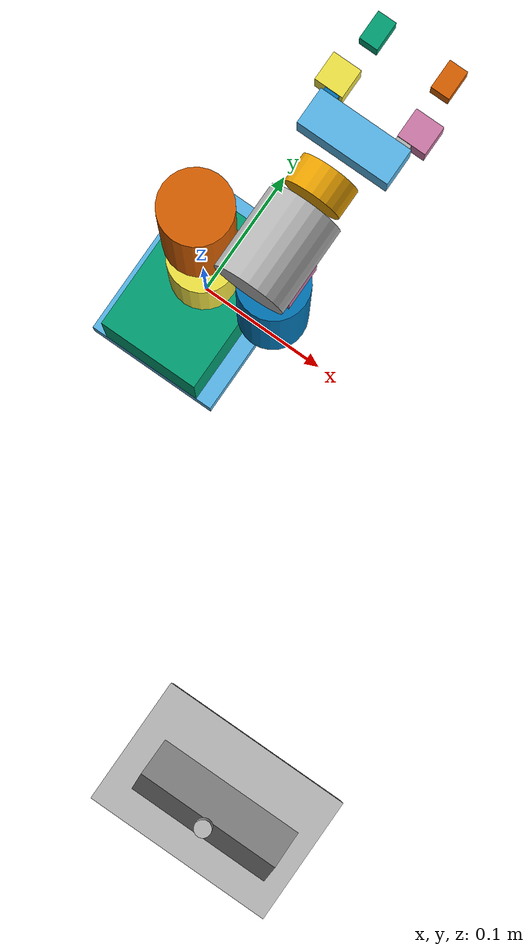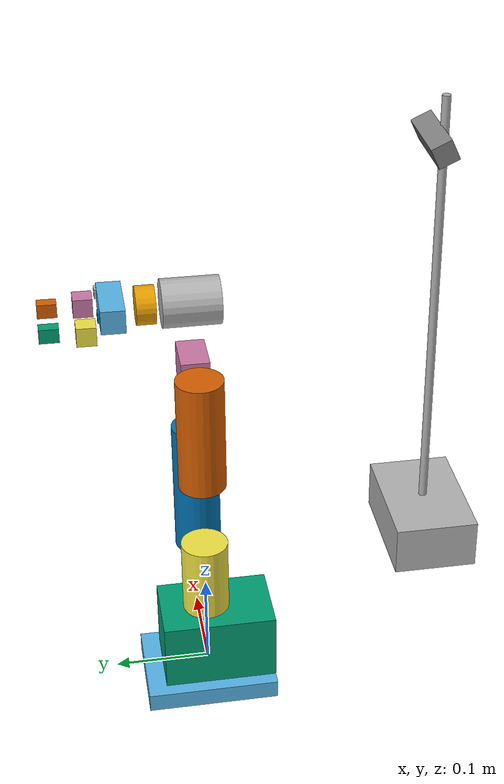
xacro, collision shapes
<?xml version="1.0"?>
<robot name="arm_6dof" xmlns:xacro="http://www.ros.org/wiki/xacro" >
    <xacro:arg name="robot_name" default="arm_6dof"/>
    <xacro:arg name="add_world" default="true"/>
    <xacro:arg name="base_link" default="base_link"/>
    <xacro:arg name="base_type" default="g_shape"/>
    <xacro:arg name="flange_link" default="link6_flange"/>
    <xacro:arg name="gripper_type" default="adaptive_gripper"/>
    <xacro:arg name="use_gripper" default="true"/>

    <xacro:if value="$(arg add_world)">
      <link name="world"/>
      <joint name="virtual_joint" type="fixed">
          <parent link="world"/>
          <child link="$(arg base_link)"/>
          <origin xyz="0 0 0" rpy="0 0 0"/>
      </joint>
    </xacro:if>

    <xacro:property name="current_base" value="$(arg base_type)"/>
    <xacro:if value="${current_base == 'g_shape'}">
        <xacro:include filename="$(find arm_description)/urdf/mech/arm_base.urdf.xacro"/>
        <xacro:arm_base
            base_link="$(arg base_link)"/>
    </xacro:if>

    <xacro:include filename="$(find arm_description)/urdf/mech/arm_define.urdf.xacro"/>
    <xacro:arm_define
      base_link="$(arg base_link)"
      flange_link="$(arg flange_link)">
      <origin xyz="0 0 0" rpy="0 0 0"/>
    </xacro:arm_define>

    <xacro:if value="$(arg use_gripper)">
        <xacro:property name="current_gripper" value="$(arg gripper_type)"/>
        <xacro:if value="${current_gripper == 'adaptive_gripper'}">
            <xacro:include filename="$(find arm_description)/urdf/mech/adaptive_gripper.urdf.xacro"/>
            <xacro:adaptive_gripper
                parent="$(arg flange_link)">
                <origin xyz="0 0 0.034" rpy="1.579 0 0"/>
            </xacro:adaptive_gripper>
        </xacro:if>
    </xacro:if>

    <xacro:include filename="$(find arm_description)/urdf/control/gazebo_sim_ros2_control.urdf.xacro"/>
    <xacro:load_gazebo_sim_ros2_control_plugin/>

    <xacro:include filename="$(find arm_description)/urdf/control/arm_transmission.urdf.xacro" />
    <xacro:arm_transmission
      flange_link="$(arg flange_link)"/>

    <xacro:include filename="$(find arm_description)/urdf/sensors/intel_rgbd_cam_d435.urdf.xacro"/>

</robot>

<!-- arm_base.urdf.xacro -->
<robot xmlns:xacro="http://wiki.ros.org/xacro">
    <xacro:macro name="arm_base" params="base_link">
        <link name="base_link">
            <inertial>
                <origin xyz="0 0 0.0" rpy="0 0 0"/>
                <mass value="5.0"/>
                <inertia
                    ixx="0.1" ixy="0.0" ixz="0.0"
                    iyy="0.1" iyz="0.0"
                    izz="0.1"/>
            </inertial>
            <visual>
                <geometry>
                    <mesh filename="file://$(find arm_description)/meshes/g_shape_base_v2_0/visual/base_link.dae"/>
                </geometry>
                <origin xyz="0.0 0 -0.03" rpy="0 0 ${pi/2}"/>
            </visual>
            <collision>
                <geometry>
                    <box size="0.105 0.14 0.02"/>
                </geometry>
                <origin xyz="0.0 0.0 -0.015" rpy="0 0 0"/>
            </collision>
        </link>

        <gazebo reference="${base_link}">
            <visual>
                <material>
                    <ambient>0.5 0.5 0.5 1</ambient>
                    <diffuse>0.5 0.5 0.5 1</diffuse>
                    <specular>0.5 0.5 0.5 1</specular>
                </material>
            </visual>
        </gazebo>
    </xacro:macro>
</robot>

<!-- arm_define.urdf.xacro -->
<robot xmlns:xacro="http://www.ros.org/wiki/xacro">

  <xacro:property name="joint_effort" value="100.0"/>
  <xacro:property name="joint_velocity" value="2.792527"/>
  <xacro:property name="joint_damping" value="4.0"/>      <!-- Changed damping from 2.0 to 4.0 since the robot was vibrating once mimic joint error was removed -->
  <xacro:property name="joint_friction" value="0.7"/>

  <xacro:property name="link1_mass" value="2.5"/>
  <xacro:property name="link2_mass" value="2.0"/>
  <xacro:property name="link3_mass" value="1.8"/>
  <xacro:property name="link4_mass" value="1.5"/>
  <xacro:property name="link5_mass" value="1.2"/>
  <xacro:property name="link6_mass" value="0.8"/>
  <xacro:property name="flange_mass" value="0.5"/>

  <xacro:macro name="link_inertial" params="mass ixx iyy izz">
    <inertial>
      <origin xyz="0 0 0.0" rpy="0 0 0"/>
      <mass value="${mass}"/>
      <inertia
        ixx="${mass*0.01}" ixy="0.0" ixz="0.0"
        iyy="${mass*0.01}" iyz="0.0"
        izz="${mass*0.01}"/>
    </inertial>
  </xacro:macro>

  <xacro:macro name="material_visual" params="ref_link ambient diffuse specular">
    <gazebo reference="${ref_link}">
      <visual>
        <material>
          <ambient>${ambient}</ambient>
          <diffuse>${diffuse}</diffuse>
          <specular>${specular}</specular>
        </material>
      </visual>
    </gazebo>
  </xacro:macro>

  <xacro:macro name="arm_define" params="base_link flange_link *origin">

    <link name="link1">
      <xacro:link_inertial mass="${link1_mass}" ixx="0.000148" iyy="0.000148" izz="0.000096"/>
      <visual>
        <geometry>
          <mesh filename="file://$(find arm_description)/meshes/6dof_arm/visual/link1.dae"/>
        </geometry>
        <origin xyz="0.0 0 0" rpy="0 0 ${-pi/2}"/>
      </visual>
      <collision>
        <geometry>
          <box size="0.08 0.12 0.075"/>
        </geometry>
        <origin xyz="0.0 -0.01 0.034" rpy="0 0 0"/>
      </collision>
    </link>

    <link name="link2">
      <xacro:link_inertial mass="${link2_mass}" ixx="0.000148" iyy="0.000148" izz="0.000096"/>
      <visual>
        <geometry>
          <mesh filename="file://$(find arm_description)/meshes/6dof_arm/visual/link2.dae"/>
        </geometry>
        <origin xyz="0.0 0 -0.06096" rpy="0 0 ${-pi/2}"/>
      </visual>
      <collision>
        <geometry>
          <cylinder radius="0.025" length="0.085"/>
        </geometry>
        <origin xyz="0.0 0 -0.02" rpy="0 0 ${-pi/2}"/>
      </collision>
    </link>

    <link name="link3">
      <xacro:link_inertial mass="${link3_mass}" ixx="0.000148" iyy="0.000148" izz="0.000096"/>
      <visual>
        <geometry>
          <mesh filename="file://$(find arm_description)/meshes/6dof_arm/visual/link3.dae"/>
        </geometry>
        <origin xyz="0.0 0 0.03256" rpy="0 ${-pi/2} 0"/>
      </visual>
      <collision>
        <geometry>
          <cylinder radius="0.025" length="0.15"/>
        </geometry>
        <origin xyz="-0.058 0 0.059" rpy="0 ${-pi/2} 0"/>
      </collision>
    </link>

    <link name="link4">
      <xacro:link_inertial mass="${link4_mass}" ixx="0.000103" iyy="0.000103" izz="0.000096"/>
      <visual>
        <geometry>
          <mesh filename="file://$(find arm_description)/meshes/6dof_arm/visual/link4.dae"/>
        </geometry>
        <origin xyz="0.0 0 0.03056" rpy="0 ${-pi/2} 0"/>
      </visual>
      <collision>
        <geometry>
          <cylinder radius="0.025" length="0.125"/>
        </geometry>
        <origin xyz="-0.05 0 0.0" rpy="0 ${-pi/2} 0"/>
      </collision>
    </link>

    <link name="link5">
      <xacro:link_inertial mass="${link5_mass}" ixx="0.000103" iyy="0.000103" izz="0.000096"/>
      <visual>
        <geometry>
          <mesh filename="file://$(find arm_description)/meshes/6dof_arm/visual/link5.dae"/>
        </geometry>
        <origin xyz="0.0 0 -0.03356" rpy="${-pi/2} 0 0"/>
      </visual>
      <collision>
        <geometry>
          <box size="0.03 0.035 0.05"/>
        </geometry>
        <origin xyz="0.0 0 -0.005" rpy="0 0.0 0"/>
      </collision>
    </link>

    <link name="link6">
      <xacro:link_inertial mass="${link6_mass}" ixx="0.00006649" iyy="0.00006649" izz="0.000096"/>
      <visual>
        <geometry>
          <mesh filename="file://$(find arm_description)/meshes/6dof_arm/visual/link6.dae"/>
        </geometry>
        <origin xyz="0 0.00 -0.038" rpy="0 0 0"/>
      </visual>
      <collision>
        <geometry>
          <cylinder radius="0.025" length="0.06"/>
        </geometry>
        <origin xyz="0 0.00 0.0" rpy="${-pi/2} 0 0"/>
      </collision>
    </link>

    <link name="link6_flange">
      <xacro:link_inertial mass="${flange_mass}" ixx="0.0000149" iyy="0.0000149" izz="0.0000196"/>
      <visual>
        <geometry>
          <mesh filename="file://$(find arm_description)/meshes/6dof_arm/visual/link7.dae"/>
        </geometry>
        <origin xyz="0.0 0 -0.012" rpy="0 0 0"/>
      </visual>
      <collision>
        <geometry>
          <cylinder radius="0.02" length="0.02"/>
        </geometry>
        <origin xyz="0 0.00 0.0" rpy="0 0 0"/>
      </collision>
    </link>

    <joint name="base_link_to_link1" type="fixed">
      <parent link="${base_link}"/>
      <child link="link1"/>
      <xacro:insert_block name="origin"/>
    </joint>

    <joint name="link1_to_link2" type="revolute">
      <axis xyz="0 0 1"/>
      <limit effort="${joint_effort}" lower="-2.879793" upper="2.879793" velocity="${joint_velocity}"/>
      <parent link="link1"/>
      <child link="link2"/>
      <origin xyz="0 0 0.13156" rpy="0 0 ${pi/2}"/>
      <dynamics damping="${joint_damping}" friction="${joint_friction}"/>
    </joint>

    <joint name="link2_to_link3" type="revolute">
      <axis xyz="0 0 1"/>
      <limit effort="${joint_effort}" lower="-2.879793" upper="2.879793" velocity="${joint_velocity}"/>
      <parent link="link2"/>
      <child link="link3"/>
      <origin xyz="0 0 -0.001" rpy="0 ${pi/2} ${-pi/2}"/>
      <dynamics damping="${joint_damping}" friction="${joint_friction}"/>
    </joint>

    <joint name="link3_to_link4" type="revolute">
      <axis xyz="0 0 1"/>
      <limit effort="${joint_effort}" lower="-2.879793" upper="2.879793" velocity="${joint_velocity}"/>
      <parent link="link3"/>
      <child link="link4"/>
      <origin xyz="-0.1104 0 0" rpy="0 0 0"/>
      <dynamics damping="${joint_damping}" friction="${joint_friction}"/>
    </joint>

    <joint name="link4_to_link5" type="revolute">
      <axis xyz="0 0 1"/>
      <limit effort="${joint_effort}" lower="-2.879793" upper="2.879793" velocity="${joint_velocity}"/>
      <parent link="link4"/>
      <child link="link5"/>
      <origin xyz="-0.096 0 0.06062" rpy="0 0 ${-pi/2}"/>
      <dynamics damping="${joint_damping}" friction="${joint_friction}"/>
    </joint>

    <joint name="link5_to_link6" type="revolute">
      <axis xyz="0 0 1"/>
      <limit effort="${joint_effort}" lower="-2.879793" upper="2.879793" velocity="${joint_velocity}"/>
      <parent link="link5"/>
      <child link="link6"/>
      <origin xyz="0 -0.07318 0" rpy="${pi/2} ${-pi/2} 0"/>
      <dynamics damping="${joint_damping}" friction="${joint_friction}"/>
    </joint>

    <joint name="link6_to_link6_flange" type="revolute">
      <axis xyz="0 0 1"/>
      <limit effort="${joint_effort}" lower="-3.05" upper="3.05" velocity="${joint_velocity}"/>
      <parent link="link6"/>
      <child link="${flange_link}"/>
      <origin xyz="0 0.0456 0" rpy="${-pi/2} 0 0"/>
      <dynamics damping="${joint_damping}" friction="${joint_friction}"/>
    </joint>

    <xacro:material_visual ref_link="link1" ambient="0.5 0.5 0.5 1" diffuse="0.5 0.5 0.5 1" specular="0.5 0.5 0.5 1"/>
    <xacro:material_visual ref_link="$link2" ambient="1 1 1 1" diffuse="1 1 1 1" specular="1 1 1 1"/>
    <xacro:material_visual ref_link="link3" ambient="1 1 1 1" diffuse="1 1 1 1" specular="1 1 1 1"/>
    <xacro:material_visual ref_link="link4" ambient="1 1 1 1" diffuse="1 1 1 1" specular="1 1 1 1"/>
    <xacro:material_visual ref_link="link5" ambient="1 1 1 1" diffuse="1 1 1 1" specular="1 1 1 1"/>
    <xacro:material_visual ref_link="link6" ambient="1 1 1 1" diffuse="1 1 1 1" specular="1 1 1 1"/>
    <xacro:material_visual ref_link="flange_link" ambient="0.5 0.5 0.5 1" diffuse="0.5 0.5 0.5 1" specular="0.5 0.5 0.5 1"/>

  </xacro:macro>
</robot>

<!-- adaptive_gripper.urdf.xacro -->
<robot xmlns:xacro="http://www.ros.org/wiki/xacro">

  <xacro:property name="joint_effort" value="56.0"/>
  <xacro:property name="joint_velocity" value="2.792527"/>
  <xacro:property name="joint_damping" value="0.0"/>
  <xacro:property name="joint_friction" value="0.0"/>

  <xacro:property name="gripper_link_mass" value="0.007"/>
  <xacro:property name="gripper_link_ixx" value="1e-6"/>
  <xacro:property name="gripper_link_iyy" value="1e-6"/>
  <xacro:property name="gripper_link_izz" value="1e-6"/>

  <xacro:macro name="gripper_link_inertial">
    <inertial>
      <origin xyz="0 0 0.0" rpy="0 0 0"/>
      <mass value="${gripper_link_mass}"/>
      <inertia
        ixx="${gripper_link_ixx}" ixy="0.0" ixz="0.0"
        iyy="${gripper_link_iyy}" iyz="0.0"
        izz="${gripper_link_izz}"/>
    </inertial>
  </xacro:macro>

  <xacro:macro name="adaptive_gripper" params="parent *origin">

    <link name="gripper_base">
      <inertial>
        <origin xyz="0 0 0.0" rpy="0 0 0"/>
        <mass value="0.07"/>
        <inertia
          ixx="0.000010725" ixy="0.0" ixz="0.0"
          iyy="0.000014392" iyz="0.0"
          izz="0.000018517"/>
      </inertial>
      <visual>
        <geometry>
          <mesh filename="file://$(find arm_description)/meshes/adaptive_gripper/visual/gripper_base.dae"/>
        </geometry>
        <origin xyz="0.0 0.0 -0.012" rpy="0 0 0"/>
      </visual>
      <collision>
        <geometry>
          <box size="0.065 0.025 0.025"/>
        </geometry>
        <origin xyz="0.0 0.0 0.0" rpy="0 0 0"/>
      </collision>
    </link>

    <joint name="$link6_flange_to_gripper_base" type="fixed">
      <parent link="link6_flange"/>
      <child link="gripper_base"/>
      <xacro:insert_block name="origin"/>
    </joint>

    <link name="gripper_left1">
      <xacro:gripper_link_inertial/>
      <visual>
        <geometry>
          <mesh filename="file://$(find arm_description)/meshes/adaptive_gripper/visual/gripper_left1.dae"/>
        </geometry>
        <origin xyz="0.039 -0.0133 -0.012" rpy="0 0 0"/>
      </visual>
      <collision>
        <geometry>
          <box size="0.013 0.02 0.015"/>
        </geometry>
        <origin xyz="0.013 0.042 -0.010" rpy="0 0 0"/>
      </collision>
    </link>

    <link name="gripper_left2">
      <xacro:gripper_link_inertial/>
      <visual>
        <geometry>
          <mesh filename="file://$(find arm_description)/meshes/adaptive_gripper/visual/gripper_left2.dae"/>
        </geometry>
        <origin xyz="0.005 -0.0195 -0.012" rpy="0 0 0"/>
      </visual>
      <collision>
        <geometry>
          <box size="0.02 0.02 0.02"/>
        </geometry>
        <origin xyz="-0.025 0.0 -0.010" rpy="0 0 0"/>
      </collision>
    </link>

    <link name="gripper_left3">
      <xacro:gripper_link_inertial/>
      <visual>
        <geometry>
          <mesh filename="file://$(find arm_description)/meshes/adaptive_gripper/visual/gripper_left3.dae"/>
        </geometry>
        <origin xyz="0.012 0.0025 -0.012" rpy="0 0 0"/>
      </visual>
      <collision>
        <geometry>
          <box size="0.01 0.01 0.01"/>
        </geometry>
        <origin xyz="-0.014 0.005 0.005" rpy="0 0 0"/>
      </collision>
    </link>

    <link name="gripper_right1">
      <xacro:gripper_link_inertial/>
      <visual>
        <geometry>
          <mesh filename="file://$(find arm_description)/meshes/adaptive_gripper/visual/gripper_right1.dae"/>
        </geometry>
        <origin xyz="-0.039 -0.0133 -0.012" rpy="0 0 0"/>
      </visual>
      <collision>
        <geometry>
          <box size="0.013 0.02 0.015"/>
        </geometry>
        <origin xyz="-0.013 0.042 -0.010" rpy="0 0 0"/>
      </collision>
    </link>

    <link name="gripper_right2">
      <xacro:gripper_link_inertial/>
      <visual>
        <geometry>
          <mesh filename="file://$(find arm_description)/meshes/adaptive_gripper/visual/gripper_right2.dae"/>
        </geometry>
        <origin xyz="-0.005 -0.0195 -0.012" rpy="0 0 0"/>
      </visual>
      <collision>
        <geometry>
          <box size="0.02 0.02 0.02"/>
        </geometry>
        <origin xyz="0.025 0.0 -0.010" rpy="0 0 0"/>
      </collision>
    </link>

    <link name="gripper_right3">
      <xacro:gripper_link_inertial/>
      <visual>
        <geometry>
          <mesh filename="file://$(find arm_description)/meshes/adaptive_gripper/visual/gripper_right3.dae"/>
        </geometry>
        <origin xyz="-0.012 0.0025 -0.012" rpy="0 0 0"/>
      </visual>
      <collision>
        <geometry>
          <box size="0.01 0.01 0.01"/>
        </geometry>
        <origin xyz="0.014 0.005 0.005" rpy="0 0 0"/>
      </collision>
    </link>

    <joint name="gripper_controller" type="revolute">
      <axis xyz="0 0 1"/>
      <limit effort="${joint_effort}" lower="-0.7" upper="0.15" velocity="${joint_velocity}"/>
      <parent link="gripper_base"/>
      <child link="gripper_left3"/>
      <origin xyz="-0.012 0.005 0" rpy="0 0 0"/>
      <dynamics damping="${joint_damping}" friction="${joint_friction}"/>
    </joint>

    <joint name="gripper_base_to_gripper_left2" type="revolute">
      <axis xyz="0 0 1"/>
      <limit effort="${joint_effort}" lower="-0.8" upper="0.5" velocity="${joint_velocity}"/>
      <parent link="gripper_base"/>
      <child link="gripper_left2"/>
      <origin xyz="-0.005 0.027 0" rpy="0 0 0"/>
      <mimic joint="gripper_controller" multiplier="1.0" offset="0"/>
      <dynamics damping="${joint_damping}" friction="${joint_friction}"/>
    </joint>

    <joint name="gripper_left3_to_gripper_left1" type="revolute">
      <axis xyz="0 0 1"/>
      <limit effort="${joint_effort}" lower="-0.5" upper="0.5" velocity="${joint_velocity}"/>
      <parent link="gripper_left3"/>
      <child link="gripper_left1"/>
      <origin xyz="-0.027 0.016 0" rpy="0 0 0"/>
      <mimic joint="gripper_controller" multiplier="-1.0" offset="0"/>
      <dynamics damping="${joint_damping}" friction="${joint_friction}"/>
    </joint>

    <joint name="gripper_base_to_gripper_right3" type="revolute">
      <axis xyz="0 0 1"/>
      <limit effort="${joint_effort}" lower="-0.15" upper="0.7" velocity="${joint_velocity}"/>
      <parent link="gripper_base"/>
      <child link="gripper_right3"/>
      <origin xyz="0.012 0.005 0" rpy="0 0 0"/>
      <mimic joint="gripper_controller" multiplier="-1.0" offset="0"/>
      <dynamics damping="${joint_damping}" friction="${joint_friction}"/>
    </joint>

    <joint name="gripper_base_to_gripper_right2" type="revolute">
      <axis xyz="0 0 1"/>
      <limit effort="${joint_effort}" lower="-0.5" upper="0.8" velocity="${joint_velocity}"/>
      <parent link="gripper_base"/>
      <child link="gripper_right2"/>
      <origin xyz="0.005 0.027 0" rpy="0 0 0"/>
      <mimic joint="gripper_controller" multiplier="-1.0" offset="0"/>
      <dynamics damping="${joint_damping}" friction="${joint_friction}"/>
    </joint>

    <joint name="gripper_right3_to_gripper_right1" type="revolute">
      <axis xyz="0 0 1"/>
      <limit effort="${joint_effort}" lower="-0.5" upper="0.5" velocity="${joint_velocity}"/>
      <parent link="gripper_right3"/>
      <child link="gripper_right1"/>
      <origin xyz="0.027 0.016 0" rpy="0 0 0"/>
      <mimic joint="gripper_controller" multiplier="1.0" offset="0"/>
      <dynamics damping="${joint_damping}" friction="${joint_friction}"/>
    </joint>

    <gazebo reference="gripper_base">
      <visual>
        <material>
          <ambient>1 1 1 1</ambient>
          <diffuse>1 1 1 1</diffuse>
          <specular>1 1 1 1</specular>
        </material>
      </visual>
    </gazebo>

  </xacro:macro>
</robot>

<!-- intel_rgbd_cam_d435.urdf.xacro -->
<robot xmlns:xacro="http://www.ros.org/wiki/xacro">

  <xacro:arg name="use_camera" default="true"/>

  <xacro:if value="${'true' == '$(arg use_camera)'}">

    <xacro:property name="M_PI" value="3.1415926535897931" />

    <xacro:property name="d435_cam_width" value="0.090"/>
    <xacro:property name="d435_cam_height" value="0.025"/>
    <xacro:property name="d435_cam_depth" value="0.02505"/>

    <xacro:property name="d435_cam_depth_to_infra1_offset" value="0.0"/>
    <xacro:property name="d435_cam_depth_to_infra2_offset" value="-0.050"/>
    <xacro:property name="d435_cam_depth_to_color_offset" value="0.015"/>

    <xacro:property name="camera_tilt_angle_deg" value="25"/>

    <link name="torso_link">
      <inertial>
        <origin xyz="0 0 0.50" />
        <mass value="2.5" />
        <inertia ixx="0.8" ixy="0.0" ixz="0.0" iyy="0.8" iyz="0.0" izz="0.8" />
      </inertial>
      <visual name="holder">
        <origin xyz="0 0 0.25" rpy="0 0 0" />
        <material name="LightGrey">
          <color rgba="0.7 0.7 0.7 1.0"/>
        </material>
        <geometry>
          <cylinder radius="0.005" length="0.5"/>
        </geometry>
      </visual>
      <visual name="base">
        <origin xyz="0 0 0" rpy="0 0 0" />
        <material name="LightGrey">
          <color rgba="0.7 0.7 0.7 1.0"/>
        </material>
        <geometry>
          <box size="0.15 0.10 0.06" />
        </geometry>
      </visual>
      <collision name="holder">
        <origin xyz="0 0 0.25" rpy="0 0 0" />
        <geometry>
          <cylinder radius="0.005" length="0.6"/>
        </geometry>
      </collision>
      <collision name="base">
        <origin xyz="0 0 0.0" rpy="0 0 0" />
        <geometry>
          <box size="0.15 0.10 0.06" />
        </geometry>
      </collision>
    </link>

    <joint name="base_link_to_torso_link" type="fixed">
      <parent link="base_link"/>
      <child link="torso_link"/>
      <origin xyz="0.22 -0.30 0" rpy="0 0 0"/>
    </joint>

    <joint name="camera_head_joint" type="fixed">
      <parent link="torso_link"/>
      <child link="camera_head_link" />
      <origin xyz="0 0.01 0.50" rpy="0.0 ${camera_tilt_angle_deg * M_PI / 180} ${M_PI/2}"/>
    </joint>

    <link name="camera_head_link">
      <visual>
        <origin xyz="0 0 0" rpy="${M_PI/2} 0.0 ${M_PI/2}"/>
        <geometry>
          <mesh filename="file://$(find arm_description)/meshes/d435/visual/d435.stl" />
        </geometry>
        <material name="aluminum">
          <color rgba="0.5 0.5 0.5 1"/>
        </material>
      </visual>
      <collision>
        <origin xyz="0 0 0" rpy="0 0 0"/>
        <geometry>
          <box size="${d435_cam_depth} ${d435_cam_width} ${d435_cam_height}"/>
        </geometry>
      </collision>
      <inertial>
        <mass value="0.072" />
        <origin xyz="0 0 0" />
        <inertia ixx="0.003881243" ixy="0.0" ixz="0.0" iyy="0.000498940" iyz="0.0" izz="0.003879257" />
      </inertial>
    </link>

    <joint name="camera_head_depth_joint" type="fixed">
      <origin xyz="0 0 0" rpy="0 0 0"/>
      <parent link="camera_head_link"/>
      <child link="camera_head_depth_frame" />
    </joint>
    <link name="camera_head_depth_frame"/>

    <joint name="camera_head_depth_optical_joint" type="fixed">
      <origin xyz="0 0 0" rpy="${-M_PI/2} 0 ${-M_PI/2}" />
      <parent link="camera_head_depth_frame" />
      <child link="camera_head_depth_optical_frame" />
    </joint>
    <link name="camera_head_depth_optical_frame"/>

    <joint name="camera_head_infra1_joint" type="fixed">
      <origin xyz="0 ${d435_cam_depth_to_infra1_offset} 0" rpy="0 0 0" />
      <parent link="camera_head_link" />
      <child link="camera_head_infra1_frame" />
    </joint>
    <link name="camera_head_infra1_frame"/>

    <joint name="camera_head_infra1_optical_joint" type="fixed">
      <origin xyz="0 0 0" rpy="${-M_PI/2} 0 ${-M_PI/2}" />
      <parent link="camera_head_infra1_frame" />
      <child link="camera_head_infra1_optical_frame" />
    </joint>
    <link name="camera_head_infra1_optical_frame"/>

    <joint name="camera_head_infra2_joint" type="fixed">
      <origin xyz="0 ${d435_cam_depth_to_infra2_offset} 0" rpy="0 0 0" />
      <parent link="camera_head_link" />
      <child link="camera_head_infra2_frame" />
    </joint>
    <link name="camera_head_infra2_frame"/>

    <joint name="camera_head_infra2_optical_joint" type="fixed">
      <origin xyz="0 0 0" rpy="${-M_PI/2} 0 ${-M_PI/2}" />
      <parent link="camera_head_infra2_frame" />
      <child link="camera_head_infra2_optical_frame" />
    </joint>
    <link name="camera_head_infra2_optical_frame"/>

    <joint name="camera_head_color_joint" type="fixed">
      <origin xyz="0 ${d435_cam_depth_to_color_offset} 0" rpy="0 0 0" />
      <parent link="camera_head_link" />
      <child link="camera_head_color_frame" />
    </joint>
    <link name="camera_head_color_frame"/>

    <joint name="camera_head_color_optical_joint" type="fixed">
      <origin xyz="0 0 0" rpy="${-M_PI/2} 0 ${-M_PI/2}" />
      <parent link="camera_head_color_frame" />
      <child link="camera_head_color_optical_frame" />
    </joint>
    <link name="camera_head_color_optical_frame"/>

    <gazebo>
      <plugin name='gz::sim::systems::Sensors' filename='gz-sim-sensors-system'>
        <render_engine>ogre2</render_engine>
      </plugin>
    </gazebo>

    <gazebo reference="camera_head_link">
        <sensor name="camera_head" type="rgbd_camera">
              <update_rate>10</update_rate>
              <topic>/camera_head</topic>
              <camera>
                <horizontal_fov>2</horizontal_fov>
                <image>
                  <width>1280</width>
                  <height>720</height>
                  <format>R8G8B8</format>
                </image>
                <clip>
                  <near>0.1</near>
                  <far>20.0</far>
                </clip>
                <noise>
                  <type>gaussian</type>
                  <mean>0.0</mean>
                  <stddev>0.005</stddev>
              </noise>
              <gz_frame_id>camera_head_depth_optical_frame</gz_frame_id>
              </camera>
              </sensor>
    </gazebo>

  </xacro:if>
</robot>
